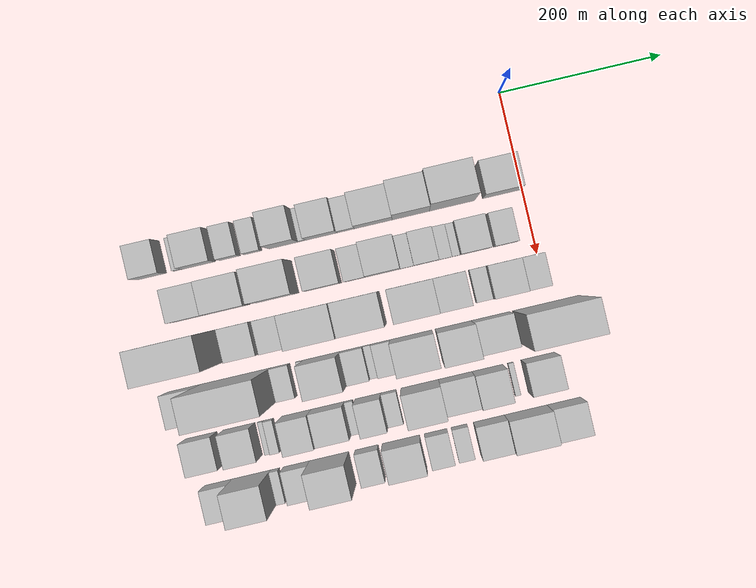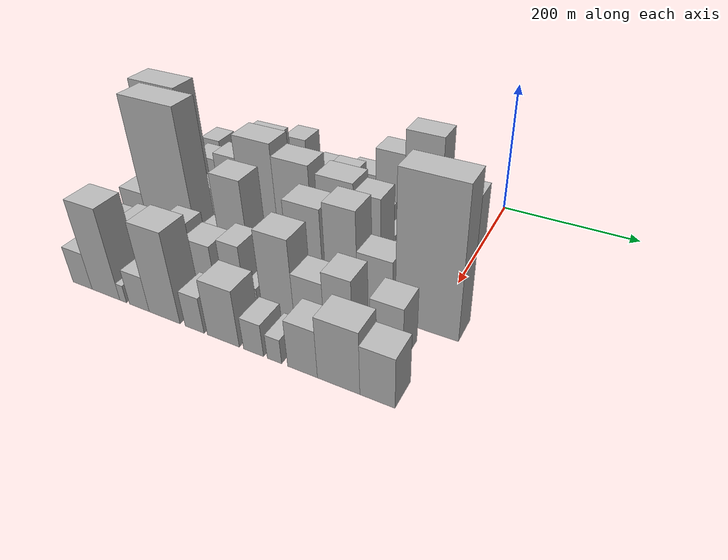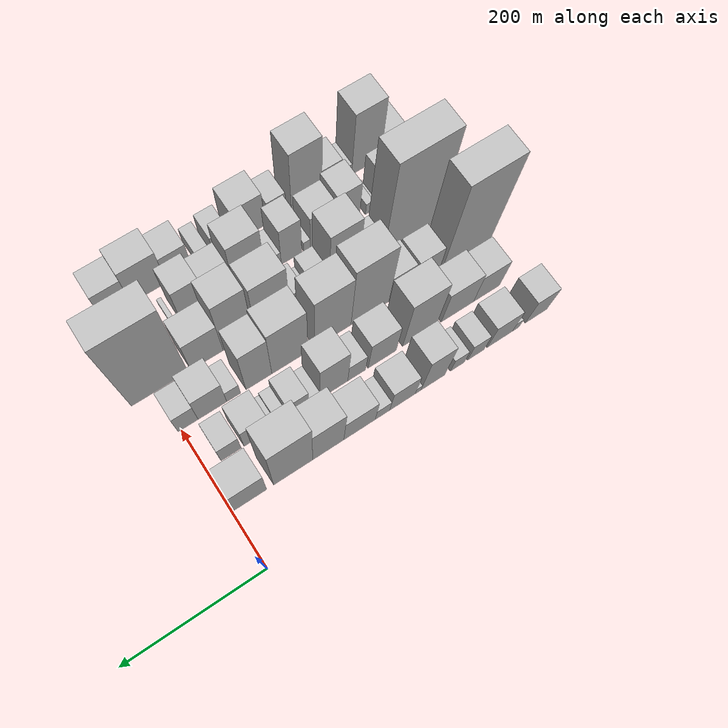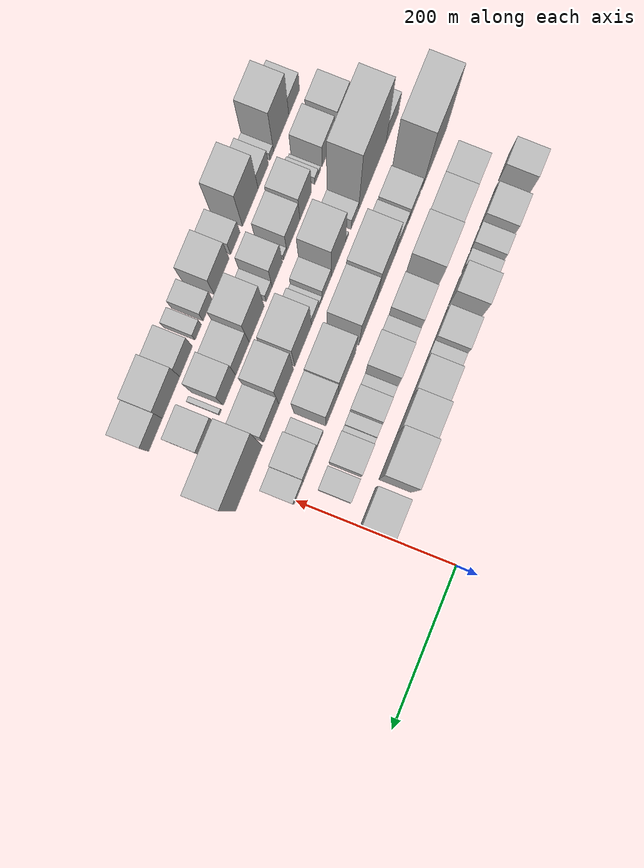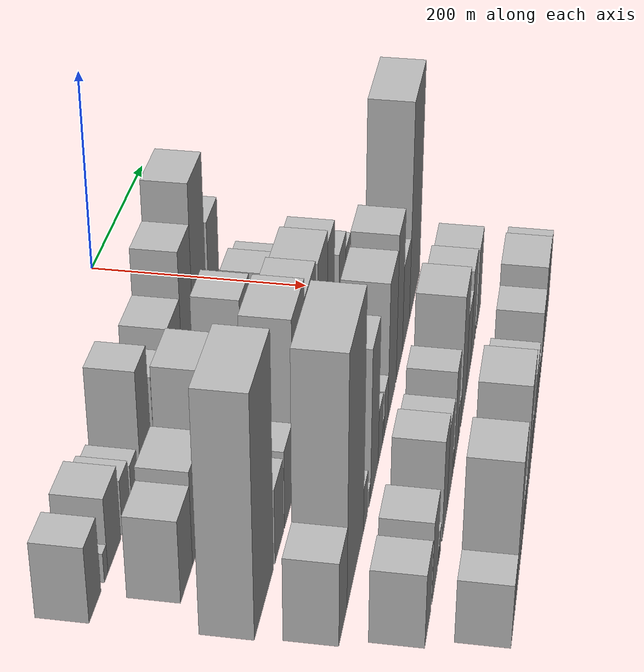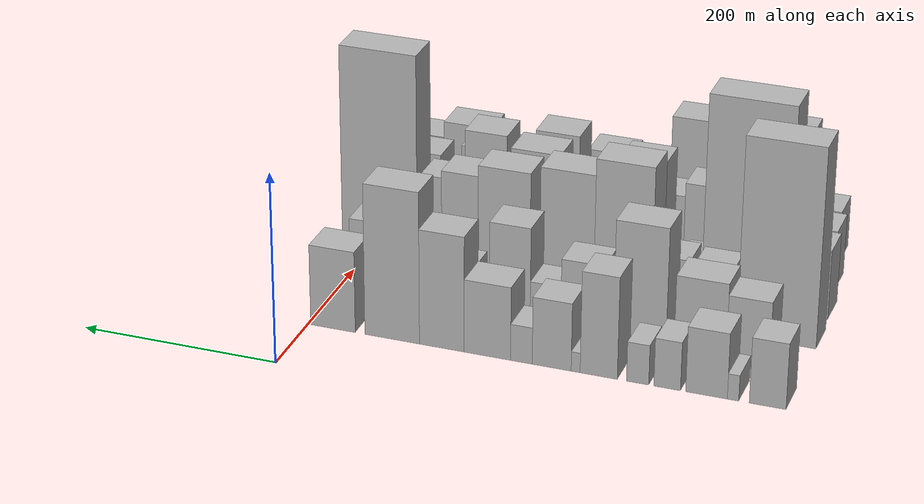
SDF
<sdf version="1.6">
 <world name="default">
  <model name="building_15">
   <static>1</static>
   <pose>100.0000 -457.8230 0 0.000000 0.000000 0.000000</pose>
   <link name="link">
    <pose>0 0 34.50 0 0 0</pose>
    <collision name="collision"><geometry><box><size>40.0000 34.8806 69.0000</size></box></geometry></collision>
    <visual name="visual">
     <cast_shadows>0</cast_shadows>
     <geometry><box><size>40.0000 34.8806 69.0000</size></box></geometry>
     <material>
      <script>
       <uri>model://HANNAS_wall/materials/scripts</uri>
       <uri>model://HANNAS_wall/materials/textures</uri>
       <name>vrc/HANNAS_wall</name>
      </script>
     </material>
    </visual>
   </link>
  </model>
  <model name="building_16">
   <static>1</static>
   <pose>100.0000 -424.9393 0 0.000000 0.000000 0.000000</pose>
   <link name="link">
    <pose>0 0 13.50 0 0 0</pose>
    <collision name="collision"><geometry><box><size>40.0000 10.8869 27.0000</size></box></geometry></collision>
    <visual name="visual">
     <cast_shadows>0</cast_shadows>
     <geometry><box><size>40.0000 10.8869 27.0000</size></box></geometry>
     <material>
      <script>
       <uri>model://HANNAS_wall/materials/scripts</uri>
       <uri>model://HANNAS_wall/materials/textures</uri>
       <name>vrc/HANNAS_wall</name>
      </script>
     </material>
    </visual>
   </link>
  </model>
  <model name="building_17">
   <static>1</static>
   <pose>100.0000 -399.5099 0 0.000000 0.000000 0.000000</pose>
   <link name="link">
    <pose>0 0 34.50 0 0 0</pose>
    <collision name="collision"><geometry><box><size>40.0000 39.9718 69.0000</size></box></geometry></collision>
    <visual name="visual">
     <cast_shadows>0</cast_shadows>
     <geometry><box><size>40.0000 39.9718 69.0000</size></box></geometry>
     <material>
      <script>
       <uri>model://HANNAS_wall/materials/scripts</uri>
       <uri>model://HANNAS_wall/materials/textures</uri>
       <name>vrc/HANNAS_wall</name>
      </script>
     </material>
    </visual>
   </link>
  </model>
  <model name="building_18">
   <static>1</static>
   <pose>100.0000 -361.6292 0 0.000000 0.000000 0.000000</pose>
   <link name="link">
    <pose>0 0 25.50 0 0 0</pose>
    <collision name="collision"><geometry><box><size>40.0000 25.7896 51.0000</size></box></geometry></collision>
    <visual name="visual">
     <cast_shadows>0</cast_shadows>
     <geometry><box><size>40.0000 25.7896 51.0000</size></box></geometry>
     <material>
      <script>
       <uri>model://HANNAS_wall/materials/scripts</uri>
       <uri>model://HANNAS_wall/materials/textures</uri>
       <name>vrc/HANNAS_wall</name>
      </script>
     </material>
    </visual>
   </link>
  </model>
  <model name="building_19">
   <static>1</static>
   <pose>100.0000 -332.9028 0 0.000000 0.000000 0.000000</pose>
   <link name="link">
    <pose>0 0 21.00 0 0 0</pose>
    <collision name="collision"><geometry><box><size>40.0000 21.6632 42.0000</size></box></geometry></collision>
    <visual name="visual">
     <cast_shadows>0</cast_shadows>
     <geometry><box><size>40.0000 21.6632 42.0000</size></box></geometry>
     <material>
      <script>
       <uri>model://HANNAS_wall/materials/scripts</uri>
       <uri>model://HANNAS_wall/materials/textures</uri>
       <name>vrc/HANNAS_wall</name>
      </script>
     </material>
    </visual>
   </link>
  </model>
  <model name="building_20">
   <static>1</static>
   <pose>100.0000 -294.7957 0 0.000000 0.000000 0.000000</pose>
   <link name="link">
    <pose>0 0 54.00 0 0 0</pose>
    <collision name="collision"><geometry><box><size>40.0000 36.5510 108.0000</size></box></geometry></collision>
    <visual name="visual">
     <cast_shadows>0</cast_shadows>
     <geometry><box><size>40.0000 36.5510 108.0000</size></box></geometry>
     <material>
      <script>
       <uri>model://HANNAS_wall/materials/scripts</uri>
       <uri>model://HANNAS_wall/materials/textures</uri>
       <name>vrc/HANNAS_wall</name>
      </script>
     </material>
    </visual>
   </link>
  </model>
  <model name="building_21">
   <static>1</static>
   <pose>100.0000 -272.0801 0 0.000000 0.000000 0.000000</pose>
   <link name="link">
    <pose>0 0 10.50 0 0 0</pose>
    <collision name="collision"><geometry><box><size>40.0000 8.8802 21.0000</size></box></geometry></collision>
    <visual name="visual">
     <cast_shadows>0</cast_shadows>
     <geometry><box><size>40.0000 8.8802 21.0000</size></box></geometry>
     <material>
      <script>
       <uri>model://HANNAS_wall/materials/scripts</uri>
       <uri>model://HANNAS_wall/materials/textures</uri>
       <name>vrc/HANNAS_wall</name>
      </script>
     </material>
    </visual>
   </link>
  </model>
  <model name="building_22">
   <static>1</static>
   <pose>100.0000 -248.2744 0 0.000000 0.000000 0.000000</pose>
   <link name="link">
    <pose>0 0 36.00 0 0 0</pose>
    <collision name="collision"><geometry><box><size>40.0000 38.7312 72.0000</size></box></geometry></collision>
    <visual name="visual">
     <cast_shadows>0</cast_shadows>
     <geometry><box><size>40.0000 38.7312 72.0000</size></box></geometry>
     <material>
      <script>
       <uri>model://HANNAS_wall/materials/scripts</uri>
       <uri>model://HANNAS_wall/materials/textures</uri>
       <name>vrc/HANNAS_wall</name>
      </script>
     </material>
    </visual>
   </link>
  </model>
  <model name="building_23">
   <static>1</static>
   <pose>100.0000 -218.1136 0 0.000000 0.000000 0.000000</pose>
   <link name="link">
    <pose>0 0 19.50 0 0 0</pose>
    <collision name="collision"><geometry><box><size>40.0000 21.5905 39.0000</size></box></geometry></collision>
    <visual name="visual">
     <cast_shadows>0</cast_shadows>
     <geometry><box><size>40.0000 21.5905 39.0000</size></box></geometry>
     <material>
      <script>
       <uri>model://HANNAS_wall/materials/scripts</uri>
       <uri>model://HANNAS_wall/materials/textures</uri>
       <name>vrc/HANNAS_wall</name>
      </script>
     </material>
    </visual>
   </link>
  </model>
  <model name="building_24">
   <static>1</static>
   <pose>100.0000 -183.9354 0 0.000000 0.000000 0.000000</pose>
   <link name="link">
    <pose>0 0 39.00 0 0 0</pose>
    <collision name="collision"><geometry><box><size>40.0000 46.7659 78.0000</size></box></geometry></collision>
    <visual name="visual">
     <cast_shadows>0</cast_shadows>
     <geometry><box><size>40.0000 46.7659 78.0000</size></box></geometry>
     <material>
      <script>
       <uri>model://HANNAS_wall/materials/scripts</uri>
       <uri>model://HANNAS_wall/materials/textures</uri>
       <name>vrc/HANNAS_wall</name>
      </script>
     </material>
    </visual>
   </link>
  </model>
  <model name="building_25">
   <static>1</static>
   <pose>100.0000 -137.7930 0 0.000000 0.000000 0.000000</pose>
   <link name="link">
    <pose>0 0 61.50 0 0 0</pose>
    <collision name="collision"><geometry><box><size>40.0000 45.5188 123.0000</size></box></geometry></collision>
    <visual name="visual">
     <cast_shadows>0</cast_shadows>
     <geometry><box><size>40.0000 45.5188 123.0000</size></box></geometry>
     <material>
      <script>
       <uri>model://HANNAS_wall/materials/scripts</uri>
       <uri>model://HANNAS_wall/materials/textures</uri>
       <name>vrc/HANNAS_wall</name>
      </script>
     </material>
    </visual>
   </link>
  </model>
  <model name="building_26">
   <static>1</static>
   <pose>100.0000 -86.9769 0 0.000000 0.000000 0.000000</pose>
   <link name="link">
    <pose>0 0 81.00 0 0 0</pose>
    <collision name="collision"><geometry><box><size>40.0000 56.1133 162.0000</size></box></geometry></collision>
    <visual name="visual">
     <cast_shadows>0</cast_shadows>
     <geometry><box><size>40.0000 56.1133 162.0000</size></box></geometry>
     <material>
      <script>
       <uri>model://HANNAS_wall/materials/scripts</uri>
       <uri>model://HANNAS_wall/materials/textures</uri>
       <name>vrc/HANNAS_wall</name>
      </script>
     </material>
    </visual>
   </link>
  </model>
  <model name="building_27">
   <static>1</static>
   <pose>100.0000 -25.7199 0 0.000000 0.000000 0.000000</pose>
   <link name="link">
    <pose>0 0 43.50 0 0 0</pose>
    <collision name="collision"><geometry><box><size>40.0000 46.4008 87.0000</size></box></geometry></collision>
    <visual name="visual">
     <cast_shadows>0</cast_shadows>
     <geometry><box><size>40.0000 46.4008 87.0000</size></box></geometry>
     <material>
      <script>
       <uri>model://HANNAS_wall/materials/scripts</uri>
       <uri>model://HANNAS_wall/materials/textures</uri>
       <name>vrc/HANNAS_wall</name>
      </script>
     </material>
    </visual>
   </link>
  </model>
  <model name="building_67">
   <static>1</static>
   <pose>160.0000 -422.9013 0 0.000000 0.000000 0.000000</pose>
   <link name="link">
    <pose>0 0 37.50 0 0 0</pose>
    <collision name="collision"><geometry><box><size>40.0000 42.1424 75.0000</size></box></geometry></collision>
    <visual name="visual">
     <cast_shadows>0</cast_shadows>
     <geometry><box><size>40.0000 42.1424 75.0000</size></box></geometry>
     <material>
      <script>
       <uri>model://HANNAS_wall/materials/scripts</uri>
       <uri>model://HANNAS_wall/materials/textures</uri>
       <name>vrc/HANNAS_wall</name>
      </script>
     </material>
    </visual>
   </link>
  </model>
  <model name="building_68">
   <static>1</static>
   <pose>160.0000 -376.2532 0 0.000000 0.000000 0.000000</pose>
   <link name="link">
    <pose>0 0 43.50 0 0 0</pose>
    <collision name="collision"><geometry><box><size>40.0000 51.1537 87.0000</size></box></geometry></collision>
    <visual name="visual">
     <cast_shadows>0</cast_shadows>
     <geometry><box><size>40.0000 51.1537 87.0000</size></box></geometry>
     <material>
      <script>
       <uri>model://HANNAS_wall/materials/scripts</uri>
       <uri>model://HANNAS_wall/materials/textures</uri>
       <name>vrc/HANNAS_wall</name>
      </script>
     </material>
    </visual>
   </link>
  </model>
  <model name="building_69">
   <static>1</static>
   <pose>160.0000 -316.5357 0 0.000000 0.000000 0.000000</pose>
   <link name="link">
    <pose>0 0 67.50 0 0 0</pose>
    <collision name="collision"><geometry><box><size>40.0000 52.2813 135.0000</size></box></geometry></collision>
    <visual name="visual">
     <cast_shadows>0</cast_shadows>
     <geometry><box><size>40.0000 52.2813 135.0000</size></box></geometry>
     <material>
      <script>
       <uri>model://HANNAS_wall/materials/scripts</uri>
       <uri>model://HANNAS_wall/materials/textures</uri>
       <name>vrc/HANNAS_wall</name>
      </script>
     </material>
    </visual>
   </link>
  </model>
  <model name="building_70">
   <static>1</static>
   <pose>160.0000 -258.9312 0 0.000000 0.000000 0.000000</pose>
   <link name="link">
    <pose>0 0 42.00 0 0 0</pose>
    <collision name="collision"><geometry><box><size>40.0000 42.9278 84.0000</size></box></geometry></collision>
    <visual name="visual">
     <cast_shadows>0</cast_shadows>
     <geometry><box><size>40.0000 42.9278 84.0000</size></box></geometry>
     <material>
      <script>
       <uri>model://HANNAS_wall/materials/scripts</uri>
       <uri>model://HANNAS_wall/materials/textures</uri>
       <name>vrc/HANNAS_wall</name>
      </script>
     </material>
    </visual>
   </link>
  </model>
  <model name="building_71">
   <static>1</static>
   <pose>160.0000 -219.9641 0 0.000000 0.000000 0.000000</pose>
   <link name="link">
    <pose>0 0 27.00 0 0 0</pose>
    <collision name="collision"><geometry><box><size>40.0000 27.0064 54.0000</size></box></geometry></collision>
    <visual name="visual">
     <cast_shadows>0</cast_shadows>
     <geometry><box><size>40.0000 27.0064 54.0000</size></box></geometry>
     <material>
      <script>
       <uri>model://HANNAS_wall/materials/scripts</uri>
       <uri>model://HANNAS_wall/materials/textures</uri>
       <name>vrc/HANNAS_wall</name>
      </script>
     </material>
    </visual>
   </link>
  </model>
  <model name="building_72">
   <static>1</static>
   <pose>160.0000 -185.6390 0 0.000000 0.000000 0.000000</pose>
   <link name="link">
    <pose>0 0 55.50 0 0 0</pose>
    <collision name="collision"><geometry><box><size>40.0000 41.6437 111.0000</size></box></geometry></collision>
    <visual name="visual">
     <cast_shadows>0</cast_shadows>
     <geometry><box><size>40.0000 41.6437 111.0000</size></box></geometry>
     <material>
      <script>
       <uri>model://HANNAS_wall/materials/scripts</uri>
       <uri>model://HANNAS_wall/materials/textures</uri>
       <name>vrc/HANNAS_wall</name>
      </script>
     </material>
    </visual>
   </link>
  </model>
  <model name="building_73">
   <static>1</static>
   <pose>160.0000 -156.6101 0 0.000000 0.000000 0.000000</pose>
   <link name="link">
    <pose>0 0 15.00 0 0 0</pose>
    <collision name="collision"><geometry><box><size>40.0000 16.4141 30.0000</size></box></geometry></collision>
    <visual name="visual">
     <cast_shadows>0</cast_shadows>
     <geometry><box><size>40.0000 16.4141 30.0000</size></box></geometry>
     <material>
      <script>
       <uri>model://HANNAS_wall/materials/scripts</uri>
       <uri>model://HANNAS_wall/materials/textures</uri>
       <name>vrc/HANNAS_wall</name>
      </script>
     </material>
    </visual>
   </link>
  </model>
  <model name="building_74">
   <static>1</static>
   <pose>160.0000 -133.0893 0 0.000000 0.000000 0.000000</pose>
   <link name="link">
    <pose>0 0 28.50 0 0 0</pose>
    <collision name="collision"><geometry><box><size>40.0000 30.6277 57.0000</size></box></geometry></collision>
    <visual name="visual">
     <cast_shadows>0</cast_shadows>
     <geometry><box><size>40.0000 30.6277 57.0000</size></box></geometry>
     <material>
      <script>
       <uri>model://HANNAS_wall/materials/scripts</uri>
       <uri>model://HANNAS_wall/materials/textures</uri>
       <name>vrc/HANNAS_wall</name>
      </script>
     </material>
    </visual>
   </link>
  </model>
  <model name="building_75">
   <static>1</static>
   <pose>160.0000 -109.5953 0 0.000000 0.000000 0.000000</pose>
   <link name="link">
    <pose>0 0 15.00 0 0 0</pose>
    <collision name="collision"><geometry><box><size>40.0000 16.3602 30.0000</size></box></geometry></collision>
    <visual name="visual">
     <cast_shadows>0</cast_shadows>
     <geometry><box><size>40.0000 16.3602 30.0000</size></box></geometry>
     <material>
      <script>
       <uri>model://HANNAS_wall/materials/scripts</uri>
       <uri>model://HANNAS_wall/materials/textures</uri>
       <name>vrc/HANNAS_wall</name>
      </script>
     </material>
    </visual>
   </link>
  </model>
  <model name="building_76">
   <static>1</static>
   <pose>160.0000 -96.3624 0 0.000000 0.000000 0.000000</pose>
   <link name="link">
    <pose>0 0 10.50 0 0 0</pose>
    <collision name="collision"><geometry><box><size>40.0000 10.1056 21.0000</size></box></geometry></collision>
    <visual name="visual">
     <cast_shadows>0</cast_shadows>
     <geometry><box><size>40.0000 10.1056 21.0000</size></box></geometry>
     <material>
      <script>
       <uri>model://HANNAS_wall/materials/scripts</uri>
       <uri>model://HANNAS_wall/materials/textures</uri>
       <name>vrc/HANNAS_wall</name>
      </script>
     </material>
    </visual>
   </link>
  </model>
  <model name="building_77">
   <static>1</static>
   <pose>160.0000 -72.5611 0 0.000000 0.000000 0.000000</pose>
   <link name="link">
    <pose>0 0 33.00 0 0 0</pose>
    <collision name="collision"><geometry><box><size>40.0000 37.4970 66.0000</size></box></geometry></collision>
    <visual name="visual">
     <cast_shadows>0</cast_shadows>
     <geometry><box><size>40.0000 37.4970 66.0000</size></box></geometry>
     <material>
      <script>
       <uri>model://HANNAS_wall/materials/scripts</uri>
       <uri>model://HANNAS_wall/materials/textures</uri>
       <name>vrc/HANNAS_wall</name>
      </script>
     </material>
    </visual>
   </link>
  </model>
  <model name="building_78">
   <static>1</static>
   <pose>160.0000 -35.3234 0 0.000000 0.000000 0.000000</pose>
   <link name="link">
    <pose>0 0 27.00 0 0 0</pose>
    <collision name="collision"><geometry><box><size>40.0000 28.9784 54.0000</size></box></geometry></collision>
    <visual name="visual">
     <cast_shadows>0</cast_shadows>
     <geometry><box><size>40.0000 28.9784 54.0000</size></box></geometry>
     <material>
      <script>
       <uri>model://HANNAS_wall/materials/scripts</uri>
       <uri>model://HANNAS_wall/materials/textures</uri>
       <name>vrc/HANNAS_wall</name>
      </script>
     </material>
    </visual>
   </link>
  </model>
  <model name="building_110">
   <static>1</static>
   <pose>220.0000 -435.3219 0 0.000000 0.000000 0.000000</pose>
   <link name="link">
    <pose>0 0 106.50 0 0 0</pose>
    <collision name="collision"><geometry><box><size>40.0000 78.2822 213.0000</size></box></geometry></collision>
    <visual name="visual">
     <cast_shadows>0</cast_shadows>
     <geometry><box><size>40.0000 78.2822 213.0000</size></box></geometry>
     <material>
      <script>
       <uri>model://HANNAS_wall/materials/scripts</uri>
       <uri>model://HANNAS_wall/materials/textures</uri>
       <name>vrc/HANNAS_wall</name>
      </script>
     </material>
    </visual>
   </link>
  </model>
  <model name="building_111">
   <static>1</static>
   <pose>220.0000 -370.8418 0 0.000000 0.000000 0.000000</pose>
   <link name="link">
    <pose>0 0 34.50 0 0 0</pose>
    <collision name="collision"><geometry><box><size>40.0000 38.6779 69.0000</size></box></geometry></collision>
    <visual name="visual">
     <cast_shadows>0</cast_shadows>
     <geometry><box><size>40.0000 38.6779 69.0000</size></box></geometry>
     <material>
      <script>
       <uri>model://HANNAS_wall/materials/scripts</uri>
       <uri>model://HANNAS_wall/materials/textures</uri>
       <name>vrc/HANNAS_wall</name>
      </script>
     </material>
    </visual>
   </link>
  </model>
  <model name="building_112">
   <static>1</static>
   <pose>220.0000 -328.9100 0 0.000000 0.000000 0.000000</pose>
   <link name="link">
    <pose>0 0 36.00 0 0 0</pose>
    <collision name="collision"><geometry><box><size>40.0000 37.1858 72.0000</size></box></geometry></collision>
    <visual name="visual">
     <cast_shadows>0</cast_shadows>
     <geometry><box><size>40.0000 37.1858 72.0000</size></box></geometry>
     <material>
      <script>
       <uri>model://HANNAS_wall/materials/scripts</uri>
       <uri>model://HANNAS_wall/materials/textures</uri>
       <name>vrc/HANNAS_wall</name>
      </script>
     </material>
    </visual>
   </link>
  </model>
  <model name="building_113">
   <static>1</static>
   <pose>220.0000 -280.8992 0 0.000000 0.000000 0.000000</pose>
   <link name="link">
    <pose>0 0 82.50 0 0 0</pose>
    <collision name="collision"><geometry><box><size>40.0000 58.8357 165.0000</size></box></geometry></collision>
    <visual name="visual">
     <cast_shadows>0</cast_shadows>
     <geometry><box><size>40.0000 58.8357 165.0000</size></box></geometry>
     <material>
      <script>
       <uri>model://HANNAS_wall/materials/scripts</uri>
       <uri>model://HANNAS_wall/materials/textures</uri>
       <name>vrc/HANNAS_wall</name>
      </script>
     </material>
    </visual>
   </link>
  </model>
  <model name="building_114">
   <static>1</static>
   <pose>220.0000 -223.6686 0 0.000000 0.000000 0.000000</pose>
   <link name="link">
    <pose>0 0 73.50 0 0 0</pose>
    <collision name="collision"><geometry><box><size>40.0000 55.6254 147.0000</size></box></geometry></collision>
    <visual name="visual">
     <cast_shadows>0</cast_shadows>
     <geometry><box><size>40.0000 55.6254 147.0000</size></box></geometry>
     <material>
      <script>
       <uri>model://HANNAS_wall/materials/scripts</uri>
       <uri>model://HANNAS_wall/materials/textures</uri>
       <name>vrc/HANNAS_wall</name>
      </script>
     </material>
    </visual>
   </link>
  </model>
  <model name="building_115">
   <static>1</static>
   <pose>220.0000 -158.8678 0 0.000000 0.000000 0.000000</pose>
   <link name="link">
    <pose>0 0 69.00 0 0 0</pose>
    <collision name="collision"><geometry><box><size>40.0000 53.9762 138.0000</size></box></geometry></collision>
    <visual name="visual">
     <cast_shadows>0</cast_shadows>
     <geometry><box><size>40.0000 53.9762 138.0000</size></box></geometry>
     <material>
      <script>
       <uri>model://HANNAS_wall/materials/scripts</uri>
       <uri>model://HANNAS_wall/materials/textures</uri>
       <name>vrc/HANNAS_wall</name>
      </script>
     </material>
    </visual>
   </link>
  </model>
  <model name="building_116">
   <static>1</static>
   <pose>220.0000 -112.7630 0 0.000000 0.000000 0.000000</pose>
   <link name="link">
    <pose>0 0 63.00 0 0 0</pose>
    <collision name="collision"><geometry><box><size>40.0000 38.2334 126.0000</size></box></geometry></collision>
    <visual name="visual">
     <cast_shadows>0</cast_shadows>
     <geometry><box><size>40.0000 38.2334 126.0000</size></box></geometry>
     <material>
      <script>
       <uri>model://HANNAS_wall/materials/scripts</uri>
       <uri>model://HANNAS_wall/materials/textures</uri>
       <name>vrc/HANNAS_wall</name>
      </script>
     </material>
    </visual>
   </link>
  </model>
  <model name="building_117">
   <static>1</static>
   <pose>220.0000 -75.5728 0 0.000000 0.000000 0.000000</pose>
   <link name="link">
    <pose>0 0 18.00 0 0 0</pose>
    <collision name="collision"><geometry><box><size>40.0000 20.1469 36.0000</size></box></geometry></collision>
    <visual name="visual">
     <cast_shadows>0</cast_shadows>
     <geometry><box><size>40.0000 20.1469 36.0000</size></box></geometry>
     <material>
      <script>
       <uri>model://HANNAS_wall/materials/scripts</uri>
       <uri>model://HANNAS_wall/materials/textures</uri>
       <name>vrc/HANNAS_wall</name>
      </script>
     </material>
    </visual>
   </link>
  </model>
  <model name="building_118">
   <static>1</static>
   <pose>220.0000 -44.7617 0 0.000000 0.000000 0.000000</pose>
   <link name="link">
    <pose>0 0 37.50 0 0 0</pose>
    <collision name="collision"><geometry><box><size>40.0000 41.4753 75.0000</size></box></geometry></collision>
    <visual name="visual">
     <cast_shadows>0</cast_shadows>
     <geometry><box><size>40.0000 41.4753 75.0000</size></box></geometry>
     <material>
      <script>
       <uri>model://HANNAS_wall/materials/scripts</uri>
       <uri>model://HANNAS_wall/materials/textures</uri>
       <name>vrc/HANNAS_wall</name>
      </script>
     </material>
    </visual>
   </link>
  </model>
  <model name="building_119">
   <static>1</static>
   <pose>220.0000 -9.6774 0 0.000000 0.000000 0.000000</pose>
   <link name="link">
    <pose>0 0 28.50 0 0 0</pose>
    <collision name="collision"><geometry><box><size>40.0000 28.6932 57.0000</size></box></geometry></collision>
    <visual name="visual">
     <cast_shadows>0</cast_shadows>
     <geometry><box><size>40.0000 28.6932 57.0000</size></box></geometry>
     <material>
      <script>
       <uri>model://HANNAS_wall/materials/scripts</uri>
       <uri>model://HANNAS_wall/materials/textures</uri>
       <name>vrc/HANNAS_wall</name>
      </script>
     </material>
    </visual>
   </link>
  </model>
  <model name="building_156">
   <static>1</static>
   <pose>280.0000 -451.3735 0 0.000000 0.000000 0.000000</pose>
   <link name="link">
    <pose>0 0 37.50 0 0 0</pose>
    <collision name="collision"><geometry><box><size>40.0000 40.3371 75.0000</size></box></geometry></collision>
    <visual name="visual">
     <cast_shadows>0</cast_shadows>
     <geometry><box><size>40.0000 40.3371 75.0000</size></box></geometry>
     <material>
      <script>
       <uri>model://HANNAS_wall/materials/scripts</uri>
       <uri>model://HANNAS_wall/materials/textures</uri>
       <name>vrc/HANNAS_wall</name>
      </script>
     </material>
    </visual>
   </link>
  </model>
  <model name="building_157">
   <static>1</static>
   <pose>280.0000 -387.6177 0 0.000000 0.000000 0.000000</pose>
   <link name="link">
    <pose>0 0 111.00 0 0 0</pose>
    <collision name="collision"><geometry><box><size>40.0000 87.1745 222.0000</size></box></geometry></collision>
    <visual name="visual">
     <cast_shadows>0</cast_shadows>
     <geometry><box><size>40.0000 87.1745 222.0000</size></box></geometry>
     <material>
      <script>
       <uri>model://HANNAS_wall/materials/scripts</uri>
       <uri>model://HANNAS_wall/materials/textures</uri>
       <name>vrc/HANNAS_wall</name>
      </script>
     </material>
    </visual>
   </link>
  </model>
  <model name="building_158">
   <static>1</static>
   <pose>280.0000 -332.4179 0 0.000000 0.000000 0.000000</pose>
   <link name="link">
    <pose>0 0 21.00 0 0 0</pose>
    <collision name="collision"><geometry><box><size>40.0000 23.2251 42.0000</size></box></geometry></collision>
    <visual name="visual">
     <cast_shadows>0</cast_shadows>
     <geometry><box><size>40.0000 23.2251 42.0000</size></box></geometry>
     <material>
      <script>
       <uri>model://HANNAS_wall/materials/scripts</uri>
       <uri>model://HANNAS_wall/materials/textures</uri>
       <name>vrc/HANNAS_wall</name>
      </script>
     </material>
    </visual>
   </link>
  </model>
  <model name="building_159">
   <static>1</static>
   <pose>280.0000 -308.3916 0 0.000000 0.000000 0.000000</pose>
   <link name="link">
    <pose>0 0 9.00 0 0 0</pose>
    <collision name="collision"><geometry><box><size>40.0000 8.8276 18.0000</size></box></geometry></collision>
    <visual name="visual">
     <cast_shadows>0</cast_shadows>
     <geometry><box><size>40.0000 8.8276 18.0000</size></box></geometry>
     <material>
      <script>
       <uri>model://HANNAS_wall/materials/scripts</uri>
       <uri>model://HANNAS_wall/materials/textures</uri>
       <name>vrc/HANNAS_wall</name>
      </script>
     </material>
    </visual>
   </link>
  </model>
  <model name="building_160">
   <static>1</static>
   <pose>280.0000 -280.8077 0 0.000000 0.000000 0.000000</pose>
   <link name="link">
    <pose>0 0 70.50 0 0 0</pose>
    <collision name="collision"><geometry><box><size>40.0000 46.3401 141.0000</size></box></geometry></collision>
    <visual name="visual">
     <cast_shadows>0</cast_shadows>
     <geometry><box><size>40.0000 46.3401 141.0000</size></box></geometry>
     <material>
      <script>
       <uri>model://HANNAS_wall/materials/scripts</uri>
       <uri>model://HANNAS_wall/materials/textures</uri>
       <name>vrc/HANNAS_wall</name>
      </script>
     </material>
    </visual>
   </link>
  </model>
  <model name="building_161">
   <static>1</static>
   <pose>280.0000 -243.9107 0 0.000000 0.000000 0.000000</pose>
   <link name="link">
    <pose>0 0 25.50 0 0 0</pose>
    <collision name="collision"><geometry><box><size>40.0000 27.4540 51.0000</size></box></geometry></collision>
    <visual name="visual">
     <cast_shadows>0</cast_shadows>
     <geometry><box><size>40.0000 27.4540 51.0000</size></box></geometry>
     <material>
      <script>
       <uri>model://HANNAS_wall/materials/scripts</uri>
       <uri>model://HANNAS_wall/materials/textures</uri>
       <name>vrc/HANNAS_wall</name>
      </script>
     </material>
    </visual>
   </link>
  </model>
  <model name="building_162">
   <static>1</static>
   <pose>280.0000 -225.1856 0 0.000000 0.000000 0.000000</pose>
   <link name="link">
    <pose>0 0 10.50 0 0 0</pose>
    <collision name="collision"><geometry><box><size>40.0000 9.9962 21.0000</size></box></geometry></collision>
    <visual name="visual">
     <cast_shadows>0</cast_shadows>
     <geometry><box><size>40.0000 9.9962 21.0000</size></box></geometry>
     <material>
      <script>
       <uri>model://HANNAS_wall/materials/scripts</uri>
       <uri>model://HANNAS_wall/materials/textures</uri>
       <name>vrc/HANNAS_wall</name>
      </script>
     </material>
    </visual>
   </link>
  </model>
  <model name="building_163">
   <static>1</static>
   <pose>280.0000 -208.3209 0 0.000000 0.000000 0.000000</pose>
   <link name="link">
    <pose>0 0 22.50 0 0 0</pose>
    <collision name="collision"><geometry><box><size>40.0000 23.7332 45.0000</size></box></geometry></collision>
    <visual name="visual">
     <cast_shadows>0</cast_shadows>
     <geometry><box><size>40.0000 23.7332 45.0000</size></box></geometry>
     <material>
      <script>
       <uri>model://HANNAS_wall/materials/scripts</uri>
       <uri>model://HANNAS_wall/materials/textures</uri>
       <name>vrc/HANNAS_wall</name>
      </script>
     </material>
    </visual>
   </link>
  </model>
  <model name="building_164">
   <static>1</static>
   <pose>280.0000 -170.6663 0 0.000000 0.000000 0.000000</pose>
   <link name="link">
    <pose>0 0 66.00 0 0 0</pose>
    <collision name="collision"><geometry><box><size>40.0000 51.5759 132.0000</size></box></geometry></collision>
    <visual name="visual">
     <cast_shadows>0</cast_shadows>
     <geometry><box><size>40.0000 51.5759 132.0000</size></box></geometry>
     <material>
      <script>
       <uri>model://HANNAS_wall/materials/scripts</uri>
       <uri>model://HANNAS_wall/materials/textures</uri>
       <name>vrc/HANNAS_wall</name>
      </script>
     </material>
    </visual>
   </link>
  </model>
  <model name="building_165">
   <static>1</static>
   <pose>280.0000 -118.6999 0 0.000000 0.000000 0.000000</pose>
   <link name="link">
    <pose>0 0 72.00 0 0 0</pose>
    <collision name="collision"><geometry><box><size>40.0000 44.3568 144.0000</size></box></geometry></collision>
    <visual name="visual">
     <cast_shadows>0</cast_shadows>
     <geometry><box><size>40.0000 44.3568 144.0000</size></box></geometry>
     <material>
      <script>
       <uri>model://HANNAS_wall/materials/scripts</uri>
       <uri>model://HANNAS_wall/materials/textures</uri>
       <name>vrc/HANNAS_wall</name>
      </script>
     </material>
    </visual>
   </link>
  </model>
  <model name="building_166">
   <static>1</static>
   <pose>280.0000 -72.7172 0 0.000000 0.000000 0.000000</pose>
   <link name="link">
    <pose>0 0 43.50 0 0 0</pose>
    <collision name="collision"><geometry><box><size>40.0000 47.6087 87.0000</size></box></geometry></collision>
    <visual name="visual">
     <cast_shadows>0</cast_shadows>
     <geometry><box><size>40.0000 47.6087 87.0000</size></box></geometry>
     <material>
      <script>
       <uri>model://HANNAS_wall/materials/scripts</uri>
       <uri>model://HANNAS_wall/materials/textures</uri>
       <name>vrc/HANNAS_wall</name>
      </script>
     </material>
    </visual>
   </link>
  </model>
  <model name="building_167">
   <static>1</static>
   <pose>280.0000 -3.9816 0 0.000000 0.000000 0.000000</pose>
   <link name="link">
    <pose>0 0 108.00 0 0 0</pose>
    <collision name="collision"><geometry><box><size>40.0000 81.8626 216.0000</size></box></geometry></collision>
    <visual name="visual">
     <cast_shadows>0</cast_shadows>
     <geometry><box><size>40.0000 81.8626 216.0000</size></box></geometry>
     <material>
      <script>
       <uri>model://HANNAS_wall/materials/scripts</uri>
       <uri>model://HANNAS_wall/materials/textures</uri>
       <name>vrc/HANNAS_wall</name>
      </script>
     </material>
    </visual>
   </link>
  </model>
  <model name="building_203">
   <static>1</static>
   <pose>340.0000 -444.6415 0 0.000000 0.000000 0.000000</pose>
   <link name="link">
    <pose>0 0 33.00 0 0 0</pose>
    <collision name="collision"><geometry><box><size>40.0000 38.7387 66.0000</size></box></geometry></collision>
    <visual name="visual">
     <cast_shadows>0</cast_shadows>
     <geometry><box><size>40.0000 38.7387 66.0000</size></box></geometry>
     <material>
      <script>
       <uri>model://HANNAS_wall/materials/scripts</uri>
       <uri>model://HANNAS_wall/materials/textures</uri>
       <name>vrc/HANNAS_wall</name>
      </script>
     </material>
    </visual>
   </link>
  </model>
  <model name="building_204">
   <static>1</static>
   <pose>340.0000 -397.6370 0 0.000000 0.000000 0.000000</pose>
   <link name="link">
    <pose>0 0 37.50 0 0 0</pose>
    <collision name="collision"><geometry><box><size>40.0000 39.2703 75.0000</size></box></geometry></collision>
    <visual name="visual">
     <cast_shadows>0</cast_shadows>
     <geometry><box><size>40.0000 39.2703 75.0000</size></box></geometry>
     <material>
      <script>
       <uri>model://HANNAS_wall/materials/scripts</uri>
       <uri>model://HANNAS_wall/materials/textures</uri>
       <name>vrc/HANNAS_wall</name>
      </script>
     </material>
    </visual>
   </link>
  </model>
  <model name="building_205">
   <static>1</static>
   <pose>340.0000 -370.3602 0 0.000000 0.000000 0.000000</pose>
   <link name="link">
    <pose>0 0 7.50 0 0 0</pose>
    <collision name="collision"><geometry><box><size>40.0000 7.2833 15.0000</size></box></geometry></collision>
    <visual name="visual">
     <cast_shadows>0</cast_shadows>
     <geometry><box><size>40.0000 7.2833 15.0000</size></box></geometry>
     <material>
      <script>
       <uri>model://HANNAS_wall/materials/scripts</uri>
       <uri>model://HANNAS_wall/materials/textures</uri>
       <name>vrc/HANNAS_wall</name>
      </script>
     </material>
    </visual>
   </link>
  </model>
  <model name="building_206">
   <static>1</static>
   <pose>340.0000 -360.8551 0 0.000000 0.000000 0.000000</pose>
   <link name="link">
    <pose>0 0 13.50 0 0 0</pose>
    <collision name="collision"><geometry><box><size>40.0000 11.7269 27.0000</size></box></geometry></collision>
    <visual name="visual">
     <cast_shadows>0</cast_shadows>
     <geometry><box><size>40.0000 11.7269 27.0000</size></box></geometry>
     <material>
      <script>
       <uri>model://HANNAS_wall/materials/scripts</uri>
       <uri>model://HANNAS_wall/materials/textures</uri>
       <name>vrc/HANNAS_wall</name>
      </script>
     </material>
    </visual>
   </link>
  </model>
  <model name="building_207">
   <static>1</static>
   <pose>340.0000 -326.6285 0 0.000000 0.000000 0.000000</pose>
   <link name="link">
    <pose>0 0 46.50 0 0 0</pose>
    <collision name="collision"><geometry><box><size>40.0000 36.7261 93.0000</size></box></geometry></collision>
    <visual name="visual">
     <cast_shadows>0</cast_shadows>
     <geometry><box><size>40.0000 36.7261 93.0000</size></box></geometry>
     <material>
      <script>
       <uri>model://HANNAS_wall/materials/scripts</uri>
       <uri>model://HANNAS_wall/materials/textures</uri>
       <name>vrc/HANNAS_wall</name>
      </script>
     </material>
    </visual>
   </link>
  </model>
  <model name="building_208">
   <static>1</static>
   <pose>340.0000 -287.7776 0 0.000000 0.000000 0.000000</pose>
   <link name="link">
    <pose>0 0 39.00 0 0 0</pose>
    <collision name="collision"><geometry><box><size>40.0000 40.9759 78.0000</size></box></geometry></collision>
    <visual name="visual">
     <cast_shadows>0</cast_shadows>
     <geometry><box><size>40.0000 40.9759 78.0000</size></box></geometry>
     <material>
      <script>
       <uri>model://HANNAS_wall/materials/scripts</uri>
       <uri>model://HANNAS_wall/materials/textures</uri>
       <name>vrc/HANNAS_wall</name>
      </script>
     </material>
    </visual>
   </link>
  </model>
  <model name="building_209">
   <static>1</static>
   <pose>340.0000 -262.0315 0 0.000000 0.000000 0.000000</pose>
   <link name="link">
    <pose>0 0 12.00 0 0 0</pose>
    <collision name="collision"><geometry><box><size>40.0000 10.5162 24.0000</size></box></geometry></collision>
    <visual name="visual">
     <cast_shadows>0</cast_shadows>
     <geometry><box><size>40.0000 10.5162 24.0000</size></box></geometry>
     <material>
      <script>
       <uri>model://HANNAS_wall/materials/scripts</uri>
       <uri>model://HANNAS_wall/materials/textures</uri>
       <name>vrc/HANNAS_wall</name>
      </script>
     </material>
    </visual>
   </link>
  </model>
  <model name="building_210">
   <static>1</static>
   <pose>340.0000 -237.8953 0 0.000000 0.000000 0.000000</pose>
   <link name="link">
    <pose>0 0 46.50 0 0 0</pose>
    <collision name="collision"><geometry><box><size>40.0000 31.7561 93.0000</size></box></geometry></collision>
    <visual name="visual">
     <cast_shadows>0</cast_shadows>
     <geometry><box><size>40.0000 31.7561 93.0000</size></box></geometry>
     <material>
      <script>
       <uri>model://HANNAS_wall/materials/scripts</uri>
       <uri>model://HANNAS_wall/materials/textures</uri>
       <name>vrc/HANNAS_wall</name>
      </script>
     </material>
    </visual>
   </link>
  </model>
  <model name="building_211">
   <static>1</static>
   <pose>340.0000 -212.6310 0 0.000000 0.000000 0.000000</pose>
   <link name="link">
    <pose>0 0 18.00 0 0 0</pose>
    <collision name="collision"><geometry><box><size>40.0000 18.7725 36.0000</size></box></geometry></collision>
    <visual name="visual">
     <cast_shadows>0</cast_shadows>
     <geometry><box><size>40.0000 18.7725 36.0000</size></box></geometry>
     <material>
      <script>
       <uri>model://HANNAS_wall/materials/scripts</uri>
       <uri>model://HANNAS_wall/materials/textures</uri>
       <name>vrc/HANNAS_wall</name>
      </script>
     </material>
    </visual>
   </link>
  </model>
  <model name="building_212">
   <static>1</static>
   <pose>340.0000 -174.0236 0 0.000000 0.000000 0.000000</pose>
   <link name="link">
    <pose>0 0 63.00 0 0 0</pose>
    <collision name="collision"><geometry><box><size>40.0000 46.4423 126.0000</size></box></geometry></collision>
    <visual name="visual">
     <cast_shadows>0</cast_shadows>
     <geometry><box><size>40.0000 46.4423 126.0000</size></box></geometry>
     <material>
      <script>
       <uri>model://HANNAS_wall/materials/scripts</uri>
       <uri>model://HANNAS_wall/materials/textures</uri>
       <name>vrc/HANNAS_wall</name>
      </script>
     </material>
    </visual>
   </link>
  </model>
  <model name="building_213">
   <static>1</static>
   <pose>340.0000 -130.0359 0 0.000000 0.000000 0.000000</pose>
   <link name="link">
    <pose>0 0 39.00 0 0 0</pose>
    <collision name="collision"><geometry><box><size>40.0000 41.5330 78.0000</size></box></geometry></collision>
    <visual name="visual">
     <cast_shadows>0</cast_shadows>
     <geometry><box><size>40.0000 41.5330 78.0000</size></box></geometry>
     <material>
      <script>
       <uri>model://HANNAS_wall/materials/scripts</uri>
       <uri>model://HANNAS_wall/materials/textures</uri>
       <name>vrc/HANNAS_wall</name>
      </script>
     </material>
    </visual>
   </link>
  </model>
  <model name="building_214">
   <static>1</static>
   <pose>340.0000 -90.3173 0 0.000000 0.000000 0.000000</pose>
   <link name="link">
    <pose>0 0 48.00 0 0 0</pose>
    <collision name="collision"><geometry><box><size>40.0000 37.9043 96.0000</size></box></geometry></collision>
    <visual name="visual">
     <cast_shadows>0</cast_shadows>
     <geometry><box><size>40.0000 37.9043 96.0000</size></box></geometry>
     <material>
      <script>
       <uri>model://HANNAS_wall/materials/scripts</uri>
       <uri>model://HANNAS_wall/materials/textures</uri>
       <name>vrc/HANNAS_wall</name>
      </script>
     </material>
    </visual>
   </link>
  </model>
  <model name="building_215">
   <static>1</static>
   <pose>340.0000 -62.0682 0 0.000000 0.000000 0.000000</pose>
   <link name="link">
    <pose>0 0 7.50 0 0 0</pose>
    <collision name="collision"><geometry><box><size>40.0000 6.5938 15.0000</size></box></geometry></collision>
    <visual name="visual">
     <cast_shadows>0</cast_shadows>
     <geometry><box><size>40.0000 6.5938 15.0000</size></box></geometry>
     <material>
      <script>
       <uri>model://HANNAS_wall/materials/scripts</uri>
       <uri>model://HANNAS_wall/materials/textures</uri>
       <name>vrc/HANNAS_wall</name>
      </script>
     </material>
    </visual>
   </link>
  </model>
  <model name="building_216">
   <static>1</static>
   <pose>340.0000 -28.0495 0 0.000000 0.000000 0.000000</pose>
   <link name="link">
    <pose>0 0 40.50 0 0 0</pose>
    <collision name="collision"><geometry><box><size>40.0000 41.4436 81.0000</size></box></geometry></collision>
    <visual name="visual">
     <cast_shadows>0</cast_shadows>
     <geometry><box><size>40.0000 41.4436 81.0000</size></box></geometry>
     <material>
      <script>
       <uri>model://HANNAS_wall/materials/scripts</uri>
       <uri>model://HANNAS_wall/materials/textures</uri>
       <name>vrc/HANNAS_wall</name>
      </script>
     </material>
    </visual>
   </link>
  </model>
  <model name="building_251">
   <static>1</static>
   <pose>400.0000 -437.6404 0 0.000000 0.000000 0.000000</pose>
   <link name="link">
    <pose>0 0 28.50 0 0 0</pose>
    <collision name="collision"><geometry><box><size>40.0000 33.9583 57.0000</size></box></geometry></collision>
    <visual name="visual">
     <cast_shadows>0</cast_shadows>
     <geometry><box><size>40.0000 33.9583 57.0000</size></box></geometry>
     <material>
      <script>
       <uri>model://HANNAS_wall/materials/scripts</uri>
       <uri>model://HANNAS_wall/materials/textures</uri>
       <name>vrc/HANNAS_wall</name>
      </script>
     </material>
    </visual>
   </link>
  </model>
  <model name="building_252">
   <static>1</static>
   <pose>400.0000 -396.8601 0 0.000000 0.000000 0.000000</pose>
   <link name="link">
    <pose>0 0 69.00 0 0 0</pose>
    <collision name="collision"><geometry><box><size>40.0000 47.6023 138.0000</size></box></geometry></collision>
    <visual name="visual">
     <cast_shadows>0</cast_shadows>
     <geometry><box><size>40.0000 47.6023 138.0000</size></box></geometry>
     <material>
      <script>
       <uri>model://HANNAS_wall/materials/scripts</uri>
       <uri>model://HANNAS_wall/materials/textures</uri>
       <name>vrc/HANNAS_wall</name>
      </script>
     </material>
    </visual>
   </link>
  </model>
  <model name="building_253">
   <static>1</static>
   <pose>400.0000 -367.4649 0 0.000000 0.000000 0.000000</pose>
   <link name="link">
    <pose>0 0 13.50 0 0 0</pose>
    <collision name="collision"><geometry><box><size>40.0000 11.1882 27.0000</size></box></geometry></collision>
    <visual name="visual">
     <cast_shadows>0</cast_shadows>
     <geometry><box><size>40.0000 11.1882 27.0000</size></box></geometry>
     <material>
      <script>
       <uri>model://HANNAS_wall/materials/scripts</uri>
       <uri>model://HANNAS_wall/materials/textures</uri>
       <name>vrc/HANNAS_wall</name>
      </script>
     </material>
    </visual>
   </link>
  </model>
  <model name="building_254">
   <static>1</static>
   <pose>400.0000 -340.7186 0 0.000000 0.000000 0.000000</pose>
   <link name="link">
    <pose>0 0 27.00 0 0 0</pose>
    <collision name="collision"><geometry><box><size>40.0000 32.3045 54.0000</size></box></geometry></collision>
    <visual name="visual">
     <cast_shadows>0</cast_shadows>
     <geometry><box><size>40.0000 32.3045 54.0000</size></box></geometry>
     <material>
      <script>
       <uri>model://HANNAS_wall/materials/scripts</uri>
       <uri>model://HANNAS_wall/materials/textures</uri>
       <name>vrc/HANNAS_wall</name>
      </script>
     </material>
    </visual>
   </link>
  </model>
  <model name="building_255">
   <static>1</static>
   <pose>400.0000 -300.2835 0 0.000000 0.000000 0.000000</pose>
   <link name="link">
    <pose>0 0 67.50 0 0 0</pose>
    <collision name="collision"><geometry><box><size>40.0000 48.5659 135.0000</size></box></geometry></collision>
    <visual name="visual">
     <cast_shadows>0</cast_shadows>
     <geometry><box><size>40.0000 48.5659 135.0000</size></box></geometry>
     <material>
      <script>
       <uri>model://HANNAS_wall/materials/scripts</uri>
       <uri>model://HANNAS_wall/materials/textures</uri>
       <name>vrc/HANNAS_wall</name>
      </script>
     </material>
    </visual>
   </link>
  </model>
  <model name="building_256">
   <static>1</static>
   <pose>400.0000 -253.7276 0 0.000000 0.000000 0.000000</pose>
   <link name="link">
    <pose>0 0 27.00 0 0 0</pose>
    <collision name="collision"><geometry><box><size>40.0000 28.5458 54.0000</size></box></geometry></collision>
    <visual name="visual">
     <cast_shadows>0</cast_shadows>
     <geometry><box><size>40.0000 28.5458 54.0000</size></box></geometry>
     <material>
      <script>
       <uri>model://HANNAS_wall/materials/scripts</uri>
       <uri>model://HANNAS_wall/materials/textures</uri>
       <name>vrc/HANNAS_wall</name>
      </script>
     </material>
    </visual>
   </link>
  </model>
  <model name="building_257">
   <static>1</static>
   <pose>400.0000 -211.3541 0 0.000000 0.000000 0.000000</pose>
   <link name="link">
    <pose>0 0 42.00 0 0 0</pose>
    <collision name="collision"><geometry><box><size>40.0000 46.2013 84.0000</size></box></geometry></collision>
    <visual name="visual">
     <cast_shadows>0</cast_shadows>
     <geometry><box><size>40.0000 46.2013 84.0000</size></box></geometry>
     <material>
      <script>
       <uri>model://HANNAS_wall/materials/scripts</uri>
       <uri>model://HANNAS_wall/materials/textures</uri>
       <name>vrc/HANNAS_wall</name>
      </script>
     </material>
    </visual>
   </link>
  </model>
  <model name="building_258">
   <static>1</static>
   <pose>400.0000 -168.3146 0 0.000000 0.000000 0.000000</pose>
   <link name="link">
    <pose>0 0 24.00 0 0 0</pose>
    <collision name="collision"><geometry><box><size>40.0000 27.8776 48.0000</size></box></geometry></collision>
    <visual name="visual">
     <cast_shadows>0</cast_shadows>
     <geometry><box><size>40.0000 27.8776 48.0000</size></box></geometry>
     <material>
      <script>
       <uri>model://HANNAS_wall/materials/scripts</uri>
       <uri>model://HANNAS_wall/materials/textures</uri>
       <name>vrc/HANNAS_wall</name>
      </script>
     </material>
    </visual>
   </link>
  </model>
  <model name="building_259">
   <static>1</static>
   <pose>400.0000 -139.6199 0 0.000000 0.000000 0.000000</pose>
   <link name="link">
    <pose>0 0 18.00 0 0 0</pose>
    <collision name="collision"><geometry><box><size>40.0000 19.5118 36.0000</size></box></geometry></collision>
    <visual name="visual">
     <cast_shadows>0</cast_shadows>
     <geometry><box><size>40.0000 19.5118 36.0000</size></box></geometry>
     <material>
      <script>
       <uri>model://HANNAS_wall/materials/scripts</uri>
       <uri>model://HANNAS_wall/materials/textures</uri>
       <name>vrc/HANNAS_wall</name>
      </script>
     </material>
    </visual>
   </link>
  </model>
  <model name="building_260">
   <static>1</static>
   <pose>400.0000 -102.5136 0 0.000000 0.000000 0.000000</pose>
   <link name="link">
    <pose>0 0 34.50 0 0 0</pose>
    <collision name="collision"><geometry><box><size>40.0000 38.7009 69.0000</size></box></geometry></collision>
    <visual name="visual">
     <cast_shadows>0</cast_shadows>
     <geometry><box><size>40.0000 38.7009 69.0000</size></box></geometry>
     <material>
      <script>
       <uri>model://HANNAS_wall/materials/scripts</uri>
       <uri>model://HANNAS_wall/materials/textures</uri>
       <name>vrc/HANNAS_wall</name>
      </script>
     </material>
    </visual>
   </link>
  </model>
  <model name="building_261">
   <static>1</static>
   <pose>400.0000 -56.8249 0 0.000000 0.000000 0.000000</pose>
   <link name="link">
    <pose>0 0 45.00 0 0 0</pose>
    <collision name="collision"><geometry><box><size>40.0000 52.6763 90.0000</size></box></geometry></collision>
    <visual name="visual">
     <cast_shadows>0</cast_shadows>
     <geometry><box><size>40.0000 52.6763 90.0000</size></box></geometry>
     <material>
      <script>
       <uri>model://HANNAS_wall/materials/scripts</uri>
       <uri>model://HANNAS_wall/materials/textures</uri>
       <name>vrc/HANNAS_wall</name>
      </script>
     </material>
    </visual>
   </link>
  </model>
  <model name="building_262">
   <static>1</static>
   <pose>400.0000 -9.6770 0 0.000000 0.000000 0.000000</pose>
   <link name="link">
    <pose>0 0 36.00 0 0 0</pose>
    <collision name="collision"><geometry><box><size>40.0000 41.6197 72.0000</size></box></geometry></collision>
    <visual name="visual">
     <cast_shadows>0</cast_shadows>
     <geometry><box><size>40.0000 41.6197 72.0000</size></box></geometry>
     <material>
      <script>
       <uri>model://HANNAS_wall/materials/scripts</uri>
       <uri>model://HANNAS_wall/materials/textures</uri>
       <name>vrc/HANNAS_wall</name>
      </script>
     </material>
    </visual>
   </link>
  </model>
 </world>
</sdf>
